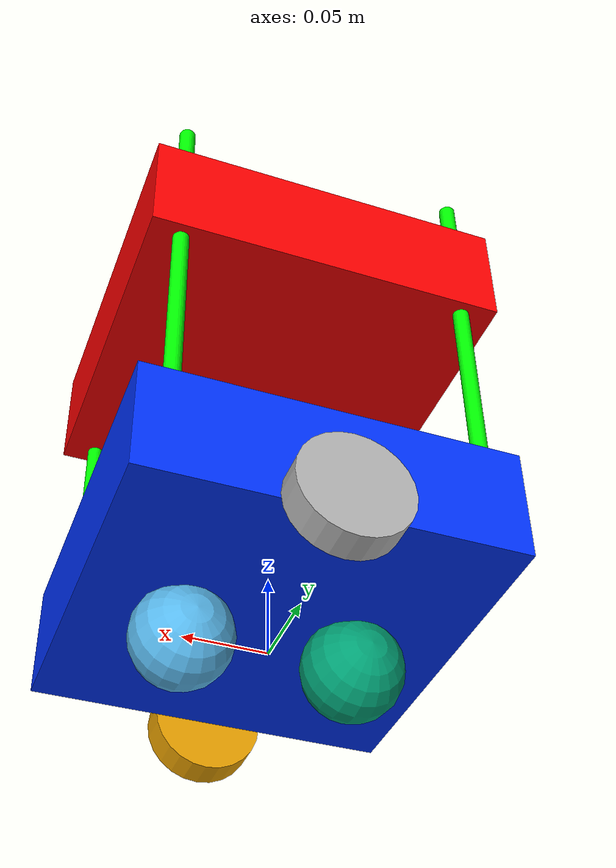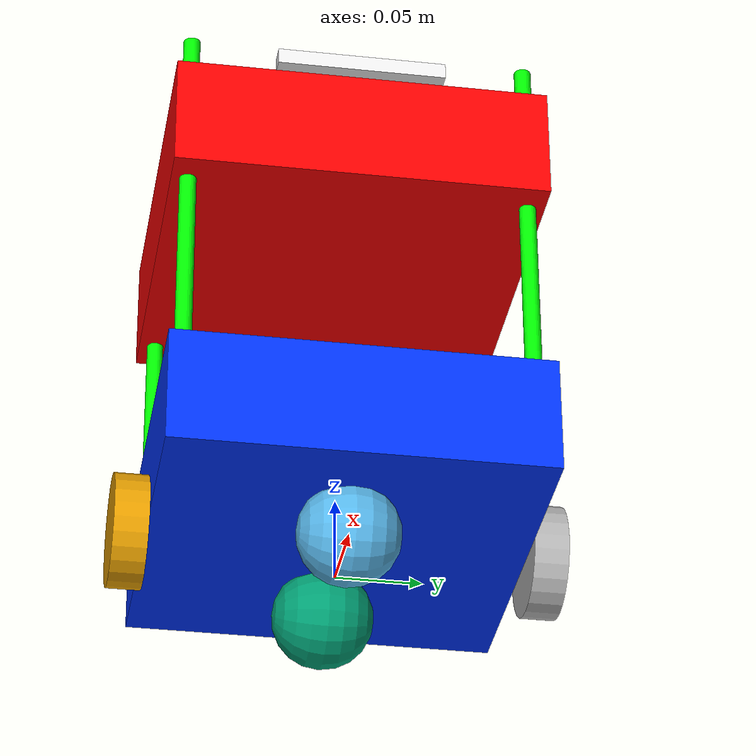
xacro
<?xml version="1.0" encoding="utf-8"?>

<robot name="barista_kobuki" xmlns:xacro="http://ros.org/wiki/xacro">
  <xacro:include filename="$(find rsrobot_description)/urdf/common_properties.urdf.xacro"/>
  <xacro:include filename="$(find rsrobot_description)/urdf/barista.gazebo"/>

                       <!-- Kobuki -->
    <link name="base_footprint"/>
    <joint name="base_joint" type="fixed">
      <origin xyz="0 0 0.0" rpy="0 0 0" />
      <parent link="base_footprint"/>
      <child link="base_link" />
    </joint>
    <link name="base_link">
      <visual>
        <geometry>
        <box size="0.22 0.22 0.07"/>
        </geometry>
        <origin xyz="0.001 0 0.05199" rpy="0 0 0"/>
        <material name="base_lcolor">
          <color rgba="0.0 0.20 1.0 1.0"/>
          <texture filename=""/>
        </material>
      </visual>
      <collision>
        <geometry>
           <box size="0.22 0.22 0.05"/>
        </geometry>
        <origin xyz="0.0 0 0.05949" rpy="0 0 0"/>
      </collision>
      <inertial>
        <!-- COM experimentally determined -->
        <origin xyz="0.01 0 0"/>
        <mass value="2.4"/> <!-- 2.4/2.6 kg for small/big battery pack -->
        <inertia ixx="0.019995" ixy="0.0" ixz="0.0"
                 iyy="0.019995" iyz="0.0"
                 izz="0.03675" />
      </inertial>
    </link>

    <link name="top_base_link">
      <inertial>
        <origin xyz="0.0 0.0 0.0" rpy="0.0 0.0 0.0"/>
        <mass value="0.0"/>
        <inertia ixx="0.0" ixy="0.0" ixz="0.0" iyy="0.0" iyz="0.0" izz="0.0"/>
      </inertial>
      <visual name="">
        <origin xyz="0.0 0.0 0.0" rpy="0.0 0.0 0.0"/>
        <geometry>
           <box size="0.22 0.22 0.07"/>
        </geometry>
        <material name="">
          <color rgba="1.0 0.0 0.0 1.0"/>
          <texture filename=""/>
        </material>
      </visual>
      <collision>
        <origin xyz="0.0 0.0 0.0" rpy="0.0 0.0 0.0"/>
        <geometry>
           <box size="0.22 0.22 0.05"/>
        </geometry>
      </collision>
    </link>

    <joint name="top_base_joint" type="fixed">
      <parent link="base_link"/>
      <child link="top_base_link"/>
      <origin xyz="0.00 0.0 0.24" rpy="0 0 0"/>
      <axis xyz="0 0 0"/>
    </joint>

    <link name="bar1_link">
      <inertial>
        <origin xyz="0.0 0.0 0.0" rpy="0.0 0.0 0.0"/>
        <mass value="0.0"/>
        <inertia ixx="0.0" ixy="0.0" ixz="0.0" iyy="0.0" iyz="0.0" izz="0.0"/>
      </inertial>
      <visual name="">
        <origin xyz="0.0 0.0 0.0" rpy="0.0 0.0 0.0"/>
        <geometry>
          <cylinder radius="0.005" length="0.25"/>
        </geometry>
        <material name="">
          <color rgba="0.0 1.0 0.0 1.0"/>
          <texture filename=""/>
        </material>
      </visual>
      <collision>
        <origin xyz="0.0 0.0 0.0" rpy="0.0 0.0 0.0"/>
        <geometry>
          <cylinder radius="0.005" length="0.25"/>
        </geometry>
      </collision>
    </link>

    <joint name="bar1_joint" type="fixed">
      <parent link="base_link"/>
      <child link="bar1_link"/>
      <origin xyz="0.09 0.10 0.18" rpy="0 0 0"/>
      <axis xyz="0 0 1"/>
    </joint>

    <link name="bar2_link">
      <inertial>
        <origin xyz="0.0 0.0 0.0" rpy="0.0 0.0 0.0"/>
        <mass value="0.0"/>
        <inertia ixx="0.0" ixy="0.0" ixz="0.0" iyy="0.0" iyz="0.0" izz="0.0"/>
      </inertial>
      <visual name="">
        <origin xyz="0.0 0.0 0.0" rpy="0.0 0.0 0.0"/>
        <geometry>
          <cylinder radius="0.005" length="0.25"/>
        </geometry>
        <material name="">
          <color rgba="0.0 1.0 0.0 1.0"/>
          <texture filename=""/>
        </material>
      </visual>
      <collision>
        <origin xyz="0.0 0.0 0.0" rpy="0.0 0.0 0.0"/>
        <geometry>
          <cylinder radius="0.005" length="0.25"/>
        </geometry>
      </collision>
    </link>

    <joint name="bar2_joint" type="fixed">
      <parent link="base_link"/>
      <child link="bar2_link"/>
      <origin xyz="-0.09 0.10 0.18" rpy="0 0 0"/>
      <axis xyz="0 0 1"/>
    </joint>

    <link name="bar3_link">
      <inertial>
        <origin xyz="0.0 0.0 0.0" rpy="0.0 0.0 0.0"/>
        <mass value="0.0"/>
        <inertia ixx="0.0" ixy="0.0" ixz="0.0" iyy="0.0" iyz="0.0" izz="0.0"/>
      </inertial>
      <visual name="">
        <origin xyz="0.0 0.0 0.0" rpy="0.0 0.0 0.0"/>
        <geometry>
          <cylinder radius="0.005" length="0.25"/>
        </geometry>
        <material name="">
          <color rgba="0.0 1.0 0.0 1.0"/>
          <texture filename=""/>
        </material>
      </visual>
      <collision>
        <origin xyz="0.0 0.0 0.0" rpy="0.0 0.0 0.0"/>
        <geometry>
          <cylinder radius="0.005" length="0.25"/>
        </geometry>
      </collision>
    </link>

    <joint name="bar3_joint" type="fixed">
      <parent link="base_link"/>
      <child link="bar3_link"/>
      <origin xyz="0.09 -0.10 0.18" rpy="0 0 0"/>
      <axis xyz="0 0 1"/>
    </joint>

    <link name="bar4_link">
      <inertial>
        <origin xyz="0.0 0.0 0.0" rpy="0.0 0.0 0.0"/>
        <mass value="0.0"/>
        <inertia ixx="0.0" ixy="0.0" ixz="0.0" iyy="0.0" iyz="0.0" izz="0.0"/>
      </inertial>
      <visual name="">
        <origin xyz="0.0 0.0 0.0" rpy="0.0 0.0 0.0"/>
        <geometry>
          <cylinder radius="0.005" length="0.25"/>
        </geometry>
        <material name="">
          <color rgba="0.0 1.0 0.0 1.0"/>
          <texture filename=""/>
        </material>
      </visual>
      <collision>
        <origin xyz="0.0 0.0 0.0" rpy="0.0 0.0 0.0"/>
        <geometry>
          <cylinder radius="0.005" length="0.25"/>
        </geometry>
      </collision>
    </link>

    <joint name="bar4_joint" type="fixed">
      <parent link="base_link"/>
      <child link="bar4_link"/>
      <origin xyz="-0.09 -0.10 0.18" rpy="0 0 0"/>
      <axis xyz="0 0 1"/>
    </joint>

    <joint name="wheel_left_joint" type="continuous">
      <parent link="base_link"/>
      <child link="wheel_left_link"/>
      <origin xyz="0.00 ${0.24/2} 0.02" rpy="${-M_PI/2} 0 0"/>
      <axis xyz="0 0 1"/>
    </joint>

    <link name="wheel_left_link">
      <visual>
        <geometry>
          <cylinder radius=".033" length="0.02"/>
        </geometry>
        <origin xyz="0 0 0" rpy="0 0 0"/>
      </visual>
      <collision>
        <geometry>
          <cylinder radius=".033" length="0.02"/>
        </geometry>
        <origin rpy="0 0 0" xyz="0 0 0"/>
      </collision>
      <inertial>
        <mass value="0.01" />
        <origin xyz="0 0 0" />
        <inertia ixx="0.001" ixy="0.0" ixz="0.0"
                 iyy="0.001" iyz="0.0"
                 izz="0.001" />
      </inertial>
    </link>

    <joint name="wheel_right_joint" type="continuous">
      <parent link="base_link"/>
      <child link="wheel_right_link"/>
      <origin xyz="0.00 -${0.24/2} 0.02" rpy="${-M_PI/2} 0 0"/>
      <axis xyz="0 0 1"/>
    </joint>

    <link name="wheel_right_link">
      <visual>
        <geometry>
          <cylinder radius=".033" length="0.02"/>
        </geometry>
        <origin xyz="0 0 0" rpy="0 0 0"/>
      </visual>
      <collision>
        <geometry>
          <cylinder radius=".033" length="0.02"/>
        </geometry>
        <origin rpy="0 0 0" xyz="0 0 0"/>
      </collision>
      <inertial>
        <mass value="0.01" />
        <origin xyz="0 0 0" />
        <inertia ixx="0.001" ixy="0.0" ixz="0.0"
                 iyy="0.001" iyz="0.0"
                 izz="0.001" />
      </inertial>
    </link>

    <joint name="caster_front_joint" type="fixed">
      <parent link="base_link"/>
      <child link="caster_front_link"/>
      <origin xyz="0.05 0.0 -0.0" rpy="${-M_PI/2} 0 0"/>
    </joint>

    <link name="caster_front_link">
      <visual>
        <geometry>
          <sphere radius="0.03"/>
        </geometry>
        <origin rpy="0 0 0" xyz="0 0 0"/>
      </visual>
      <collision>
        <geometry>
          <sphere radius="0.03"/>
        </geometry>
        <origin rpy="0 0 0" xyz="0 0 0"/>
      </collision>
      <inertial>
        <mass value="0.01" />
        <origin xyz="0 0 0" />
        <inertia ixx="0.001" ixy="0.0" ixz="0.0"
                 iyy="0.001" iyz="0.0"
                 izz="0.001" />
      </inertial>
    </link>

    <joint name="caster_back_joint" type="fixed">
      <parent link="base_link"/>
      <child link="caster_back_link"/>
      <origin xyz="-0.05 0.0 -0.0" rpy="${-M_PI/2} 0 0"/>
    </joint>
    <link name="caster_back_link">
      <visual>
        <geometry>
          <sphere radius="0.03"/>
        </geometry>
        <origin rpy="0 0 0" xyz="0 0 0"/>
      </visual>
      <collision>
        <geometry>
          <sphere radius="0.02"/>
        </geometry>
        <origin rpy="0 0 0" xyz="0 0 0"/>
      </collision>
      <inertial>
        <mass value="0.01" />
        <origin xyz="0 0 0" />
        <inertia ixx="0.001" ixy="0.0" ixz="0.0"
                 iyy="0.001" iyz="0.0"
                 izz="0.001" />
      </inertial>
    </link>

        <!--kinect_link-->
  <link name="camera_link">
      <inertial>
        <origin xyz="0.0 0.0 0.0" rpy="0.0 0.0 0.0"/>
        <mass value="0.1"/>
        <inertia ixx="1e-6" ixy="0.0" ixz="0.0" iyy="1e-6" iyz="0.0" izz="1e-6"/>
      </inertial>
      <visual name="kinect_visual">
        <origin xyz="0.0 0.0 0.0" rpy="0.0 0.0 0.0"/>
        <geometry>
          <box size="0.01 0.1 0.01"/>
        </geometry>
        <material name="white"/>
      </visual>
      <collision>
        <origin xyz="0.0 0.0 0.0" rpy="0.0 0.0 0.0"/>
        <geometry>
          <box size="0.05 0.05 0.05"/>
        </geometry>
      </collision>
    </link>

      <joint name="kinect_joint" type="fixed">
        <origin xyz="0.10 0.0 0.29" rpy="0.0 0.0 0.0"/>
        <parent link="base_link"/>
        <child link="camera_link"/>
        <axis xyz="0.0 0 1.0"/>
      </joint>

      <joint name="camera_optical_joint" type="fixed">
        <origin xyz="0 0 0" rpy="-1.5707 0 -1.5707"/>
        <parent link="camera_link"/>
        <child link="camera_link_optical"/>
      </joint>

      <link name="camera_link_optical">
    </link>

</robot>
